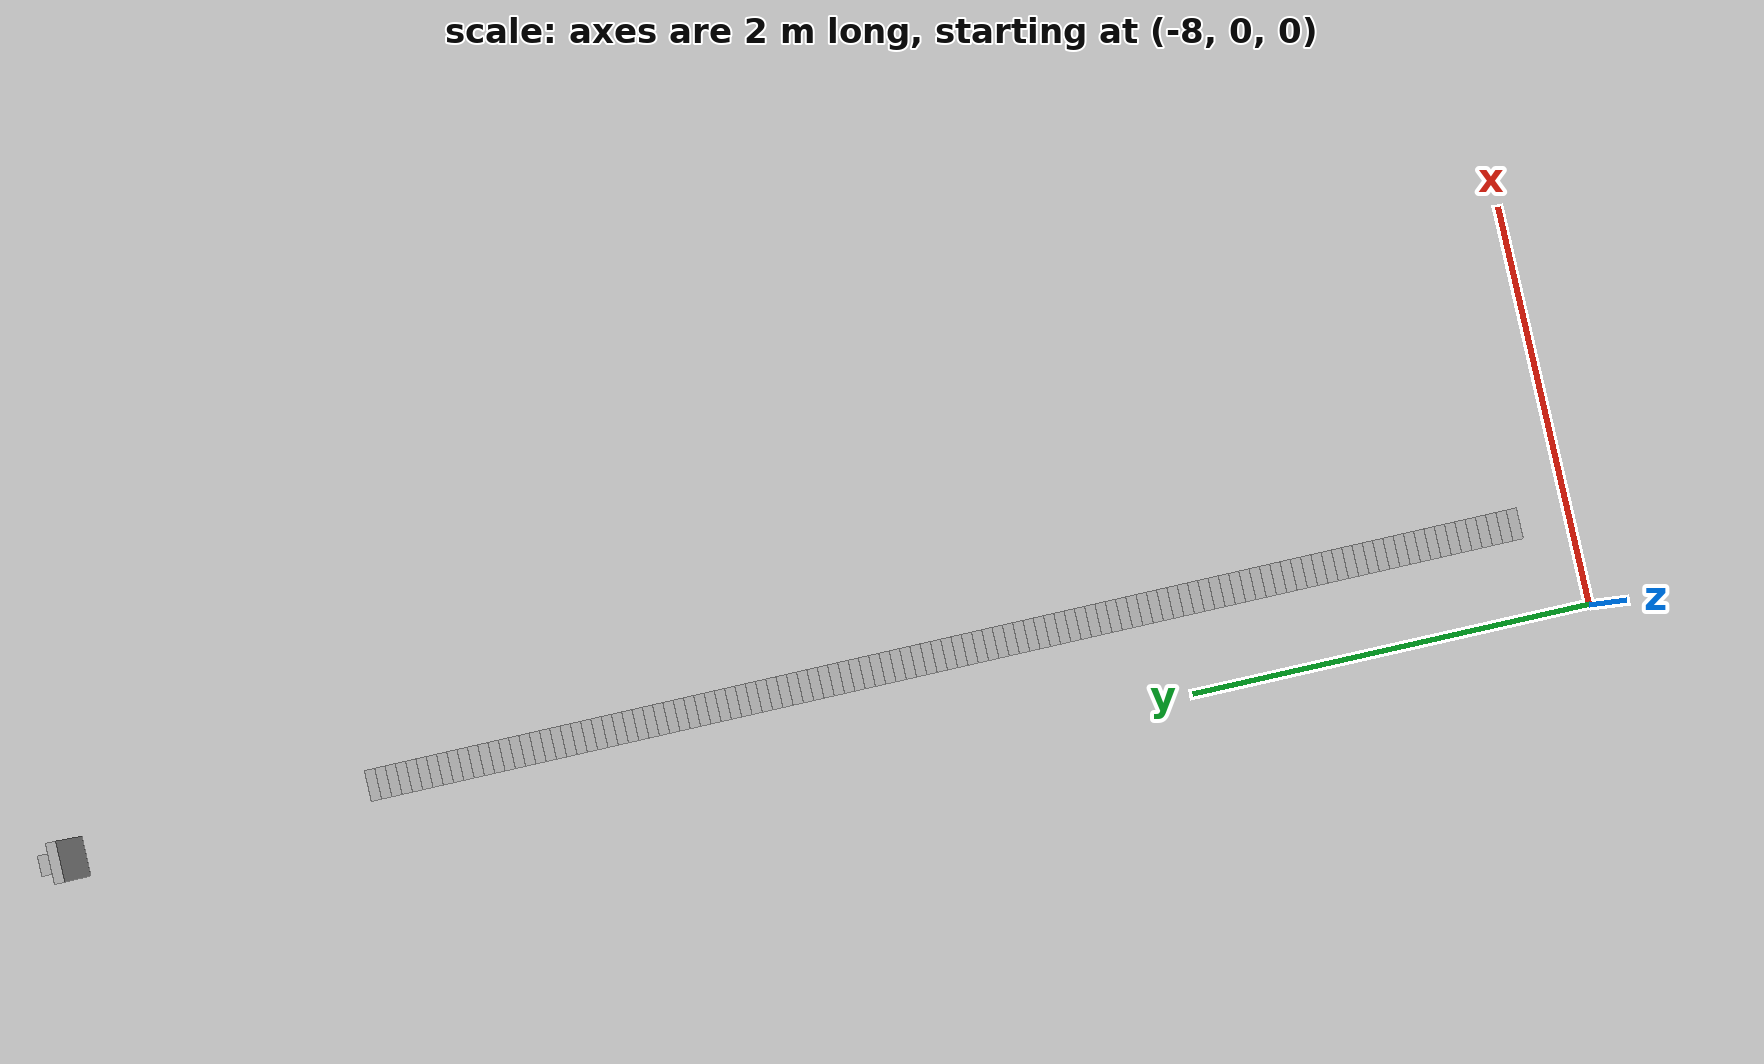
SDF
<sdf version="1.6">
 <world name="df_walled">
  <include><uri>model://sun</uri></include>
  <include><uri>model://ground_plane</uri></include>
  <model name="df_walls">
   <static>true</static>
   <link name="wall_00000">
    <pose>-7.5610 7.5410 0.7500 0 0 0</pose>
    <collision name="col"><geometry><box><size>0.1000 0.0500 1.5000</size></box></geometry></collision>
    <visual name="vis">
     <geometry><box><size>0.1000 0.0500 1.5000</size></box></geometry>
     <material><ambient>0.5 0.5 0.5 1</ambient><diffuse>0.7 0.7 0.7 1</diffuse></material>
    </visual>
   </link>
   <link name="wall_00001">
    <pose>-7.5610 7.4910 0.7500 0 0 0</pose>
    <collision name="col"><geometry><box><size>0.2000 0.0500 1.5000</size></box></geometry></collision>
    <visual name="vis">
     <geometry><box><size>0.2000 0.0500 1.5000</size></box></geometry>
     <material><ambient>0.5 0.5 0.5 1</ambient><diffuse>0.7 0.7 0.7 1</diffuse></material>
    </visual>
   </link>
   <link name="wall_00072">
    <pose>-7.5360 5.9410 0.7500 0 0 0</pose>
    <collision name="col"><geometry><box><size>0.1500 0.0500 1.5000</size></box></geometry></collision>
    <visual name="vis">
     <geometry><box><size>0.1500 0.0500 1.5000</size></box></geometry>
     <material><ambient>0.5 0.5 0.5 1</ambient><diffuse>0.7 0.7 0.7 1</diffuse></material>
    </visual>
   </link>
   <link name="wall_00075">
    <pose>-7.5360 5.8910 0.7500 0 0 0</pose>
    <collision name="col"><geometry><box><size>0.1500 0.0500 1.5000</size></box></geometry></collision>
    <visual name="vis">
     <geometry><box><size>0.1500 0.0500 1.5000</size></box></geometry>
     <material><ambient>0.5 0.5 0.5 1</ambient><diffuse>0.7 0.7 0.7 1</diffuse></material>
    </visual>
   </link>
   <link name="wall_00078">
    <pose>-7.5360 5.8410 0.7500 0 0 0</pose>
    <collision name="col"><geometry><box><size>0.1500 0.0500 1.5000</size></box></geometry></collision>
    <visual name="vis">
     <geometry><box><size>0.1500 0.0500 1.5000</size></box></geometry>
     <material><ambient>0.5 0.5 0.5 1</ambient><diffuse>0.7 0.7 0.7 1</diffuse></material>
    </visual>
   </link>
   <link name="wall_00081">
    <pose>-7.5360 5.7910 0.7500 0 0 0</pose>
    <collision name="col"><geometry><box><size>0.1500 0.0500 1.5000</size></box></geometry></collision>
    <visual name="vis">
     <geometry><box><size>0.1500 0.0500 1.5000</size></box></geometry>
     <material><ambient>0.5 0.5 0.5 1</ambient><diffuse>0.7 0.7 0.7 1</diffuse></material>
    </visual>
   </link>
   <link name="wall_00084">
    <pose>-7.5360 5.7410 0.7500 0 0 0</pose>
    <collision name="col"><geometry><box><size>0.1500 0.0500 1.5000</size></box></geometry></collision>
    <visual name="vis">
     <geometry><box><size>0.1500 0.0500 1.5000</size></box></geometry>
     <material><ambient>0.5 0.5 0.5 1</ambient><diffuse>0.7 0.7 0.7 1</diffuse></material>
    </visual>
   </link>
   <link name="wall_00087">
    <pose>-7.5360 5.6910 0.7500 0 0 0</pose>
    <collision name="col"><geometry><box><size>0.1500 0.0500 1.5000</size></box></geometry></collision>
    <visual name="vis">
     <geometry><box><size>0.1500 0.0500 1.5000</size></box></geometry>
     <material><ambient>0.5 0.5 0.5 1</ambient><diffuse>0.7 0.7 0.7 1</diffuse></material>
    </visual>
   </link>
   <link name="wall_00090">
    <pose>-7.5360 5.6410 0.7500 0 0 0</pose>
    <collision name="col"><geometry><box><size>0.1500 0.0500 1.5000</size></box></geometry></collision>
    <visual name="vis">
     <geometry><box><size>0.1500 0.0500 1.5000</size></box></geometry>
     <material><ambient>0.5 0.5 0.5 1</ambient><diffuse>0.7 0.7 0.7 1</diffuse></material>
    </visual>
   </link>
   <link name="wall_00093">
    <pose>-7.5360 5.5910 0.7500 0 0 0</pose>
    <collision name="col"><geometry><box><size>0.1500 0.0500 1.5000</size></box></geometry></collision>
    <visual name="vis">
     <geometry><box><size>0.1500 0.0500 1.5000</size></box></geometry>
     <material><ambient>0.5 0.5 0.5 1</ambient><diffuse>0.7 0.7 0.7 1</diffuse></material>
    </visual>
   </link>
   <link name="wall_00096">
    <pose>-7.5360 5.5410 0.7500 0 0 0</pose>
    <collision name="col"><geometry><box><size>0.1500 0.0500 1.5000</size></box></geometry></collision>
    <visual name="vis">
     <geometry><box><size>0.1500 0.0500 1.5000</size></box></geometry>
     <material><ambient>0.5 0.5 0.5 1</ambient><diffuse>0.7 0.7 0.7 1</diffuse></material>
    </visual>
   </link>
   <link name="wall_00099">
    <pose>-7.5360 5.4910 0.7500 0 0 0</pose>
    <collision name="col"><geometry><box><size>0.1500 0.0500 1.5000</size></box></geometry></collision>
    <visual name="vis">
     <geometry><box><size>0.1500 0.0500 1.5000</size></box></geometry>
     <material><ambient>0.5 0.5 0.5 1</ambient><diffuse>0.7 0.7 0.7 1</diffuse></material>
    </visual>
   </link>
   <link name="wall_00102">
    <pose>-7.5360 5.4410 0.7500 0 0 0</pose>
    <collision name="col"><geometry><box><size>0.1500 0.0500 1.5000</size></box></geometry></collision>
    <visual name="vis">
     <geometry><box><size>0.1500 0.0500 1.5000</size></box></geometry>
     <material><ambient>0.5 0.5 0.5 1</ambient><diffuse>0.7 0.7 0.7 1</diffuse></material>
    </visual>
   </link>
   <link name="wall_00105">
    <pose>-7.5360 5.3910 0.7500 0 0 0</pose>
    <collision name="col"><geometry><box><size>0.1500 0.0500 1.5000</size></box></geometry></collision>
    <visual name="vis">
     <geometry><box><size>0.1500 0.0500 1.5000</size></box></geometry>
     <material><ambient>0.5 0.5 0.5 1</ambient><diffuse>0.7 0.7 0.7 1</diffuse></material>
    </visual>
   </link>
   <link name="wall_00108">
    <pose>-7.5360 5.3410 0.7500 0 0 0</pose>
    <collision name="col"><geometry><box><size>0.1500 0.0500 1.5000</size></box></geometry></collision>
    <visual name="vis">
     <geometry><box><size>0.1500 0.0500 1.5000</size></box></geometry>
     <material><ambient>0.5 0.5 0.5 1</ambient><diffuse>0.7 0.7 0.7 1</diffuse></material>
    </visual>
   </link>
   <link name="wall_00111">
    <pose>-7.5360 5.2910 0.7500 0 0 0</pose>
    <collision name="col"><geometry><box><size>0.1500 0.0500 1.5000</size></box></geometry></collision>
    <visual name="vis">
     <geometry><box><size>0.1500 0.0500 1.5000</size></box></geometry>
     <material><ambient>0.5 0.5 0.5 1</ambient><diffuse>0.7 0.7 0.7 1</diffuse></material>
    </visual>
   </link>
   <link name="wall_00114">
    <pose>-7.5360 5.2410 0.7500 0 0 0</pose>
    <collision name="col"><geometry><box><size>0.1500 0.0500 1.5000</size></box></geometry></collision>
    <visual name="vis">
     <geometry><box><size>0.1500 0.0500 1.5000</size></box></geometry>
     <material><ambient>0.5 0.5 0.5 1</ambient><diffuse>0.7 0.7 0.7 1</diffuse></material>
    </visual>
   </link>
   <link name="wall_00117">
    <pose>-7.5360 5.1910 0.7500 0 0 0</pose>
    <collision name="col"><geometry><box><size>0.1500 0.0500 1.5000</size></box></geometry></collision>
    <visual name="vis">
     <geometry><box><size>0.1500 0.0500 1.5000</size></box></geometry>
     <material><ambient>0.5 0.5 0.5 1</ambient><diffuse>0.7 0.7 0.7 1</diffuse></material>
    </visual>
   </link>
   <link name="wall_00120">
    <pose>-7.5360 5.1410 0.7500 0 0 0</pose>
    <collision name="col"><geometry><box><size>0.1500 0.0500 1.5000</size></box></geometry></collision>
    <visual name="vis">
     <geometry><box><size>0.1500 0.0500 1.5000</size></box></geometry>
     <material><ambient>0.5 0.5 0.5 1</ambient><diffuse>0.7 0.7 0.7 1</diffuse></material>
    </visual>
   </link>
   <link name="wall_00123">
    <pose>-7.5360 5.0910 0.7500 0 0 0</pose>
    <collision name="col"><geometry><box><size>0.1500 0.0500 1.5000</size></box></geometry></collision>
    <visual name="vis">
     <geometry><box><size>0.1500 0.0500 1.5000</size></box></geometry>
     <material><ambient>0.5 0.5 0.5 1</ambient><diffuse>0.7 0.7 0.7 1</diffuse></material>
    </visual>
   </link>
   <link name="wall_00126">
    <pose>-7.5360 5.0410 0.7500 0 0 0</pose>
    <collision name="col"><geometry><box><size>0.1500 0.0500 1.5000</size></box></geometry></collision>
    <visual name="vis">
     <geometry><box><size>0.1500 0.0500 1.5000</size></box></geometry>
     <material><ambient>0.5 0.5 0.5 1</ambient><diffuse>0.7 0.7 0.7 1</diffuse></material>
    </visual>
   </link>
   <link name="wall_00129">
    <pose>-7.5360 4.9910 0.7500 0 0 0</pose>
    <collision name="col"><geometry><box><size>0.1500 0.0500 1.5000</size></box></geometry></collision>
    <visual name="vis">
     <geometry><box><size>0.1500 0.0500 1.5000</size></box></geometry>
     <material><ambient>0.5 0.5 0.5 1</ambient><diffuse>0.7 0.7 0.7 1</diffuse></material>
    </visual>
   </link>
   <link name="wall_00132">
    <pose>-7.5360 4.9410 0.7500 0 0 0</pose>
    <collision name="col"><geometry><box><size>0.1500 0.0500 1.5000</size></box></geometry></collision>
    <visual name="vis">
     <geometry><box><size>0.1500 0.0500 1.5000</size></box></geometry>
     <material><ambient>0.5 0.5 0.5 1</ambient><diffuse>0.7 0.7 0.7 1</diffuse></material>
    </visual>
   </link>
   <link name="wall_00135">
    <pose>-7.5360 4.8910 0.7500 0 0 0</pose>
    <collision name="col"><geometry><box><size>0.1500 0.0500 1.5000</size></box></geometry></collision>
    <visual name="vis">
     <geometry><box><size>0.1500 0.0500 1.5000</size></box></geometry>
     <material><ambient>0.5 0.5 0.5 1</ambient><diffuse>0.7 0.7 0.7 1</diffuse></material>
    </visual>
   </link>
   <link name="wall_00138">
    <pose>-7.5360 4.8410 0.7500 0 0 0</pose>
    <collision name="col"><geometry><box><size>0.1500 0.0500 1.5000</size></box></geometry></collision>
    <visual name="vis">
     <geometry><box><size>0.1500 0.0500 1.5000</size></box></geometry>
     <material><ambient>0.5 0.5 0.5 1</ambient><diffuse>0.7 0.7 0.7 1</diffuse></material>
    </visual>
   </link>
   <link name="wall_00141">
    <pose>-7.5360 4.7910 0.7500 0 0 0</pose>
    <collision name="col"><geometry><box><size>0.1500 0.0500 1.5000</size></box></geometry></collision>
    <visual name="vis">
     <geometry><box><size>0.1500 0.0500 1.5000</size></box></geometry>
     <material><ambient>0.5 0.5 0.5 1</ambient><diffuse>0.7 0.7 0.7 1</diffuse></material>
    </visual>
   </link>
   <link name="wall_00144">
    <pose>-7.5360 4.7410 0.7500 0 0 0</pose>
    <collision name="col"><geometry><box><size>0.1500 0.0500 1.5000</size></box></geometry></collision>
    <visual name="vis">
     <geometry><box><size>0.1500 0.0500 1.5000</size></box></geometry>
     <material><ambient>0.5 0.5 0.5 1</ambient><diffuse>0.7 0.7 0.7 1</diffuse></material>
    </visual>
   </link>
   <link name="wall_00147">
    <pose>-7.5360 4.6910 0.7500 0 0 0</pose>
    <collision name="col"><geometry><box><size>0.1500 0.0500 1.5000</size></box></geometry></collision>
    <visual name="vis">
     <geometry><box><size>0.1500 0.0500 1.5000</size></box></geometry>
     <material><ambient>0.5 0.5 0.5 1</ambient><diffuse>0.7 0.7 0.7 1</diffuse></material>
    </visual>
   </link>
   <link name="wall_00150">
    <pose>-7.5360 4.6410 0.7500 0 0 0</pose>
    <collision name="col"><geometry><box><size>0.1500 0.0500 1.5000</size></box></geometry></collision>
    <visual name="vis">
     <geometry><box><size>0.1500 0.0500 1.5000</size></box></geometry>
     <material><ambient>0.5 0.5 0.5 1</ambient><diffuse>0.7 0.7 0.7 1</diffuse></material>
    </visual>
   </link>
   <link name="wall_00153">
    <pose>-7.5360 4.5910 0.7500 0 0 0</pose>
    <collision name="col"><geometry><box><size>0.1500 0.0500 1.5000</size></box></geometry></collision>
    <visual name="vis">
     <geometry><box><size>0.1500 0.0500 1.5000</size></box></geometry>
     <material><ambient>0.5 0.5 0.5 1</ambient><diffuse>0.7 0.7 0.7 1</diffuse></material>
    </visual>
   </link>
   <link name="wall_00156">
    <pose>-7.5360 4.5410 0.7500 0 0 0</pose>
    <collision name="col"><geometry><box><size>0.1500 0.0500 1.5000</size></box></geometry></collision>
    <visual name="vis">
     <geometry><box><size>0.1500 0.0500 1.5000</size></box></geometry>
     <material><ambient>0.5 0.5 0.5 1</ambient><diffuse>0.7 0.7 0.7 1</diffuse></material>
    </visual>
   </link>
   <link name="wall_00159">
    <pose>-7.5360 4.4910 0.7500 0 0 0</pose>
    <collision name="col"><geometry><box><size>0.1500 0.0500 1.5000</size></box></geometry></collision>
    <visual name="vis">
     <geometry><box><size>0.1500 0.0500 1.5000</size></box></geometry>
     <material><ambient>0.5 0.5 0.5 1</ambient><diffuse>0.7 0.7 0.7 1</diffuse></material>
    </visual>
   </link>
   <link name="wall_00162">
    <pose>-7.5360 4.4410 0.7500 0 0 0</pose>
    <collision name="col"><geometry><box><size>0.1500 0.0500 1.5000</size></box></geometry></collision>
    <visual name="vis">
     <geometry><box><size>0.1500 0.0500 1.5000</size></box></geometry>
     <material><ambient>0.5 0.5 0.5 1</ambient><diffuse>0.7 0.7 0.7 1</diffuse></material>
    </visual>
   </link>
   <link name="wall_00165">
    <pose>-7.5360 4.3910 0.7500 0 0 0</pose>
    <collision name="col"><geometry><box><size>0.1500 0.0500 1.5000</size></box></geometry></collision>
    <visual name="vis">
     <geometry><box><size>0.1500 0.0500 1.5000</size></box></geometry>
     <material><ambient>0.5 0.5 0.5 1</ambient><diffuse>0.7 0.7 0.7 1</diffuse></material>
    </visual>
   </link>
   <link name="wall_00168">
    <pose>-7.5360 4.3410 0.7500 0 0 0</pose>
    <collision name="col"><geometry><box><size>0.1500 0.0500 1.5000</size></box></geometry></collision>
    <visual name="vis">
     <geometry><box><size>0.1500 0.0500 1.5000</size></box></geometry>
     <material><ambient>0.5 0.5 0.5 1</ambient><diffuse>0.7 0.7 0.7 1</diffuse></material>
    </visual>
   </link>
   <link name="wall_00171">
    <pose>-7.5360 4.2910 0.7500 0 0 0</pose>
    <collision name="col"><geometry><box><size>0.1500 0.0500 1.5000</size></box></geometry></collision>
    <visual name="vis">
     <geometry><box><size>0.1500 0.0500 1.5000</size></box></geometry>
     <material><ambient>0.5 0.5 0.5 1</ambient><diffuse>0.7 0.7 0.7 1</diffuse></material>
    </visual>
   </link>
   <link name="wall_00173">
    <pose>-7.5360 4.2410 0.7500 0 0 0</pose>
    <collision name="col"><geometry><box><size>0.1500 0.0500 1.5000</size></box></geometry></collision>
    <visual name="vis">
     <geometry><box><size>0.1500 0.0500 1.5000</size></box></geometry>
     <material><ambient>0.5 0.5 0.5 1</ambient><diffuse>0.7 0.7 0.7 1</diffuse></material>
    </visual>
   </link>
   <link name="wall_00175">
    <pose>-7.5360 4.1910 0.7500 0 0 0</pose>
    <collision name="col"><geometry><box><size>0.1500 0.0500 1.5000</size></box></geometry></collision>
    <visual name="vis">
     <geometry><box><size>0.1500 0.0500 1.5000</size></box></geometry>
     <material><ambient>0.5 0.5 0.5 1</ambient><diffuse>0.7 0.7 0.7 1</diffuse></material>
    </visual>
   </link>
   <link name="wall_00177">
    <pose>-7.5360 4.1410 0.7500 0 0 0</pose>
    <collision name="col"><geometry><box><size>0.1500 0.0500 1.5000</size></box></geometry></collision>
    <visual name="vis">
     <geometry><box><size>0.1500 0.0500 1.5000</size></box></geometry>
     <material><ambient>0.5 0.5 0.5 1</ambient><diffuse>0.7 0.7 0.7 1</diffuse></material>
    </visual>
   </link>
   <link name="wall_00179">
    <pose>-7.5360 4.0910 0.7500 0 0 0</pose>
    <collision name="col"><geometry><box><size>0.1500 0.0500 1.5000</size></box></geometry></collision>
    <visual name="vis">
     <geometry><box><size>0.1500 0.0500 1.5000</size></box></geometry>
     <material><ambient>0.5 0.5 0.5 1</ambient><diffuse>0.7 0.7 0.7 1</diffuse></material>
    </visual>
   </link>
   <link name="wall_00181">
    <pose>-7.5360 4.0410 0.7500 0 0 0</pose>
    <collision name="col"><geometry><box><size>0.1500 0.0500 1.5000</size></box></geometry></collision>
    <visual name="vis">
     <geometry><box><size>0.1500 0.0500 1.5000</size></box></geometry>
     <material><ambient>0.5 0.5 0.5 1</ambient><diffuse>0.7 0.7 0.7 1</diffuse></material>
    </visual>
   </link>
   <link name="wall_00183">
    <pose>-7.5360 3.9910 0.7500 0 0 0</pose>
    <collision name="col"><geometry><box><size>0.1500 0.0500 1.5000</size></box></geometry></collision>
    <visual name="vis">
     <geometry><box><size>0.1500 0.0500 1.5000</size></box></geometry>
     <material><ambient>0.5 0.5 0.5 1</ambient><diffuse>0.7 0.7 0.7 1</diffuse></material>
    </visual>
   </link>
   <link name="wall_00185">
    <pose>-7.5360 3.9410 0.7500 0 0 0</pose>
    <collision name="col"><geometry><box><size>0.1500 0.0500 1.5000</size></box></geometry></collision>
    <visual name="vis">
     <geometry><box><size>0.1500 0.0500 1.5000</size></box></geometry>
     <material><ambient>0.5 0.5 0.5 1</ambient><diffuse>0.7 0.7 0.7 1</diffuse></material>
    </visual>
   </link>
   <link name="wall_00187">
    <pose>-7.5360 3.8910 0.7500 0 0 0</pose>
    <collision name="col"><geometry><box><size>0.1500 0.0500 1.5000</size></box></geometry></collision>
    <visual name="vis">
     <geometry><box><size>0.1500 0.0500 1.5000</size></box></geometry>
     <material><ambient>0.5 0.5 0.5 1</ambient><diffuse>0.7 0.7 0.7 1</diffuse></material>
    </visual>
   </link>
   <link name="wall_00189">
    <pose>-7.5360 3.8410 0.7500 0 0 0</pose>
    <collision name="col"><geometry><box><size>0.1500 0.0500 1.5000</size></box></geometry></collision>
    <visual name="vis">
     <geometry><box><size>0.1500 0.0500 1.5000</size></box></geometry>
     <material><ambient>0.5 0.5 0.5 1</ambient><diffuse>0.7 0.7 0.7 1</diffuse></material>
    </visual>
   </link>
   <link name="wall_00191">
    <pose>-7.5360 3.7910 0.7500 0 0 0</pose>
    <collision name="col"><geometry><box><size>0.1500 0.0500 1.5000</size></box></geometry></collision>
    <visual name="vis">
     <geometry><box><size>0.1500 0.0500 1.5000</size></box></geometry>
     <material><ambient>0.5 0.5 0.5 1</ambient><diffuse>0.7 0.7 0.7 1</diffuse></material>
    </visual>
   </link>
   <link name="wall_00193">
    <pose>-7.5360 3.7410 0.7500 0 0 0</pose>
    <collision name="col"><geometry><box><size>0.1500 0.0500 1.5000</size></box></geometry></collision>
    <visual name="vis">
     <geometry><box><size>0.1500 0.0500 1.5000</size></box></geometry>
     <material><ambient>0.5 0.5 0.5 1</ambient><diffuse>0.7 0.7 0.7 1</diffuse></material>
    </visual>
   </link>
   <link name="wall_00195">
    <pose>-7.5360 3.6910 0.7500 0 0 0</pose>
    <collision name="col"><geometry><box><size>0.1500 0.0500 1.5000</size></box></geometry></collision>
    <visual name="vis">
     <geometry><box><size>0.1500 0.0500 1.5000</size></box></geometry>
     <material><ambient>0.5 0.5 0.5 1</ambient><diffuse>0.7 0.7 0.7 1</diffuse></material>
    </visual>
   </link>
   <link name="wall_00197">
    <pose>-7.5360 3.6410 0.7500 0 0 0</pose>
    <collision name="col"><geometry><box><size>0.1500 0.0500 1.5000</size></box></geometry></collision>
    <visual name="vis">
     <geometry><box><size>0.1500 0.0500 1.5000</size></box></geometry>
     <material><ambient>0.5 0.5 0.5 1</ambient><diffuse>0.7 0.7 0.7 1</diffuse></material>
    </visual>
   </link>
   <link name="wall_00199">
    <pose>-7.5360 3.5910 0.7500 0 0 0</pose>
    <collision name="col"><geometry><box><size>0.1500 0.0500 1.5000</size></box></geometry></collision>
    <visual name="vis">
     <geometry><box><size>0.1500 0.0500 1.5000</size></box></geometry>
     <material><ambient>0.5 0.5 0.5 1</ambient><diffuse>0.7 0.7 0.7 1</diffuse></material>
    </visual>
   </link>
   <link name="wall_00201">
    <pose>-7.5360 3.5410 0.7500 0 0 0</pose>
    <collision name="col"><geometry><box><size>0.1500 0.0500 1.5000</size></box></geometry></collision>
    <visual name="vis">
     <geometry><box><size>0.1500 0.0500 1.5000</size></box></geometry>
     <material><ambient>0.5 0.5 0.5 1</ambient><diffuse>0.7 0.7 0.7 1</diffuse></material>
    </visual>
   </link>
   <link name="wall_00203">
    <pose>-7.5360 3.4910 0.7500 0 0 0</pose>
    <collision name="col"><geometry><box><size>0.1500 0.0500 1.5000</size></box></geometry></collision>
    <visual name="vis">
     <geometry><box><size>0.1500 0.0500 1.5000</size></box></geometry>
     <material><ambient>0.5 0.5 0.5 1</ambient><diffuse>0.7 0.7 0.7 1</diffuse></material>
    </visual>
   </link>
   <link name="wall_00205">
    <pose>-7.5360 3.4410 0.7500 0 0 0</pose>
    <collision name="col"><geometry><box><size>0.1500 0.0500 1.5000</size></box></geometry></collision>
    <visual name="vis">
     <geometry><box><size>0.1500 0.0500 1.5000</size></box></geometry>
     <material><ambient>0.5 0.5 0.5 1</ambient><diffuse>0.7 0.7 0.7 1</diffuse></material>
    </visual>
   </link>
   <link name="wall_00207">
    <pose>-7.5360 3.3910 0.7500 0 0 0</pose>
    <collision name="col"><geometry><box><size>0.1500 0.0500 1.5000</size></box></geometry></collision>
    <visual name="vis">
     <geometry><box><size>0.1500 0.0500 1.5000</size></box></geometry>
     <material><ambient>0.5 0.5 0.5 1</ambient><diffuse>0.7 0.7 0.7 1</diffuse></material>
    </visual>
   </link>
   <link name="wall_00209">
    <pose>-7.5360 3.3410 0.7500 0 0 0</pose>
    <collision name="col"><geometry><box><size>0.1500 0.0500 1.5000</size></box></geometry></collision>
    <visual name="vis">
     <geometry><box><size>0.1500 0.0500 1.5000</size></box></geometry>
     <material><ambient>0.5 0.5 0.5 1</ambient><diffuse>0.7 0.7 0.7 1</diffuse></material>
    </visual>
   </link>
   <link name="wall_00211">
    <pose>-7.5360 3.2910 0.7500 0 0 0</pose>
    <collision name="col"><geometry><box><size>0.1500 0.0500 1.5000</size></box></geometry></collision>
    <visual name="vis">
     <geometry><box><size>0.1500 0.0500 1.5000</size></box></geometry>
     <material><ambient>0.5 0.5 0.5 1</ambient><diffuse>0.7 0.7 0.7 1</diffuse></material>
    </visual>
   </link>
   <link name="wall_00213">
    <pose>-7.5360 3.2410 0.7500 0 0 0</pose>
    <collision name="col"><geometry><box><size>0.1500 0.0500 1.5000</size></box></geometry></collision>
    <visual name="vis">
     <geometry><box><size>0.1500 0.0500 1.5000</size></box></geometry>
     <material><ambient>0.5 0.5 0.5 1</ambient><diffuse>0.7 0.7 0.7 1</diffuse></material>
    </visual>
   </link>
   <link name="wall_00215">
    <pose>-7.5360 3.1910 0.7500 0 0 0</pose>
    <collision name="col"><geometry><box><size>0.1500 0.0500 1.5000</size></box></geometry></collision>
    <visual name="vis">
     <geometry><box><size>0.1500 0.0500 1.5000</size></box></geometry>
     <material><ambient>0.5 0.5 0.5 1</ambient><diffuse>0.7 0.7 0.7 1</diffuse></material>
    </visual>
   </link>
   <link name="wall_00217">
    <pose>-7.5360 3.1410 0.7500 0 0 0</pose>
    <collision name="col"><geometry><box><size>0.1500 0.0500 1.5000</size></box></geometry></collision>
    <visual name="vis">
     <geometry><box><size>0.1500 0.0500 1.5000</size></box></geometry>
     <material><ambient>0.5 0.5 0.5 1</ambient><diffuse>0.7 0.7 0.7 1</diffuse></material>
    </visual>
   </link>
   <link name="wall_00219">
    <pose>-7.5360 3.0910 0.7500 0 0 0</pose>
    <collision name="col"><geometry><box><size>0.1500 0.0500 1.5000</size></box></geometry></collision>
    <visual name="vis">
     <geometry><box><size>0.1500 0.0500 1.5000</size></box></geometry>
     <material><ambient>0.5 0.5 0.5 1</ambient><diffuse>0.7 0.7 0.7 1</diffuse></material>
    </visual>
   </link>
   <link name="wall_00221">
    <pose>-7.5360 3.0410 0.7500 0 0 0</pose>
    <collision name="col"><geometry><box><size>0.1500 0.0500 1.5000</size></box></geometry></collision>
    <visual name="vis">
     <geometry><box><size>0.1500 0.0500 1.5000</size></box></geometry>
     <material><ambient>0.5 0.5 0.5 1</ambient><diffuse>0.7 0.7 0.7 1</diffuse></material>
    </visual>
   </link>
   <link name="wall_00223">
    <pose>-7.5360 2.9910 0.7500 0 0 0</pose>
    <collision name="col"><geometry><box><size>0.1500 0.0500 1.5000</size></box></geometry></collision>
    <visual name="vis">
     <geometry><box><size>0.1500 0.0500 1.5000</size></box></geometry>
     <material><ambient>0.5 0.5 0.5 1</ambient><diffuse>0.7 0.7 0.7 1</diffuse></material>
    </visual>
   </link>
   <link name="wall_00225">
    <pose>-7.5360 2.9410 0.7500 0 0 0</pose>
    <collision name="col"><geometry><box><size>0.1500 0.0500 1.5000</size></box></geometry></collision>
    <visual name="vis">
     <geometry><box><size>0.1500 0.0500 1.5000</size></box></geometry>
     <material><ambient>0.5 0.5 0.5 1</ambient><diffuse>0.7 0.7 0.7 1</diffuse></material>
    </visual>
   </link>
   <link name="wall_00227">
    <pose>-7.5360 2.8910 0.7500 0 0 0</pose>
    <collision name="col"><geometry><box><size>0.1500 0.0500 1.5000</size></box></geometry></collision>
    <visual name="vis">
     <geometry><box><size>0.1500 0.0500 1.5000</size></box></geometry>
     <material><ambient>0.5 0.5 0.5 1</ambient><diffuse>0.7 0.7 0.7 1</diffuse></material>
    </visual>
   </link>
   <link name="wall_00229">
    <pose>-7.5360 2.8410 0.7500 0 0 0</pose>
    <collision name="col"><geometry><box><size>0.1500 0.0500 1.5000</size></box></geometry></collision>
    <visual name="vis">
     <geometry><box><size>0.1500 0.0500 1.5000</size></box></geometry>
     <material><ambient>0.5 0.5 0.5 1</ambient><diffuse>0.7 0.7 0.7 1</diffuse></material>
    </visual>
   </link>
   <link name="wall_00231">
    <pose>-7.5360 2.7910 0.7500 0 0 0</pose>
    <collision name="col"><geometry><box><size>0.1500 0.0500 1.5000</size></box></geometry></collision>
    <visual name="vis">
     <geometry><box><size>0.1500 0.0500 1.5000</size></box></geometry>
     <material><ambient>0.5 0.5 0.5 1</ambient><diffuse>0.7 0.7 0.7 1</diffuse></material>
    </visual>
   </link>
   <link name="wall_00233">
    <pose>-7.5360 2.7410 0.7500 0 0 0</pose>
    <collision name="col"><geometry><box><size>0.1500 0.0500 1.5000</size></box></geometry></collision>
    <visual name="vis">
     <geometry><box><size>0.1500 0.0500 1.5000</size></box></geometry>
     <material><ambient>0.5 0.5 0.5 1</ambient><diffuse>0.7 0.7 0.7 1</diffuse></material>
    </visual>
   </link>
   <link name="wall_00235">
    <pose>-7.5360 2.6910 0.7500 0 0 0</pose>
    <collision name="col"><geometry><box><size>0.1500 0.0500 1.5000</size></box></geometry></collision>
    <visual name="vis">
     <geometry><box><size>0.1500 0.0500 1.5000</size></box></geometry>
     <material><ambient>0.5 0.5 0.5 1</ambient><diffuse>0.7 0.7 0.7 1</diffuse></material>
    </visual>
   </link>
   <link name="wall_00237">
    <pose>-7.5360 2.6410 0.7500 0 0 0</pose>
    <collision name="col"><geometry><box><size>0.1500 0.0500 1.5000</size></box></geometry></collision>
    <visual name="vis">
     <geometry><box><size>0.1500 0.0500 1.5000</size></box></geometry>
     <material><ambient>0.5 0.5 0.5 1</ambient><diffuse>0.7 0.7 0.7 1</diffuse></material>
    </visual>
   </link>
   <link name="wall_00239">
    <pose>-7.5360 2.5910 0.7500 0 0 0</pose>
    <collision name="col"><geometry><box><size>0.1500 0.0500 1.5000</size></box></geometry></collision>
    <visual name="vis">
     <geometry><box><size>0.1500 0.0500 1.5000</size></box></geometry>
     <material><ambient>0.5 0.5 0.5 1</ambient><diffuse>0.7 0.7 0.7 1</diffuse></material>
    </visual>
   </link>
   <link name="wall_00241">
    <pose>-7.5360 2.5410 0.7500 0 0 0</pose>
    <collision name="col"><geometry><box><size>0.1500 0.0500 1.5000</size></box></geometry></collision>
    <visual name="vis">
     <geometry><box><size>0.1500 0.0500 1.5000</size></box></geometry>
     <material><ambient>0.5 0.5 0.5 1</ambient><diffuse>0.7 0.7 0.7 1</diffuse></material>
    </visual>
   </link>
   <link name="wall_00243">
    <pose>-7.5360 2.4910 0.7500 0 0 0</pose>
    <collision name="col"><geometry><box><size>0.1500 0.0500 1.5000</size></box></geometry></collision>
    <visual name="vis">
     <geometry><box><size>0.1500 0.0500 1.5000</size></box></geometry>
     <material><ambient>0.5 0.5 0.5 1</ambient><diffuse>0.7 0.7 0.7 1</diffuse></material>
    </visual>
   </link>
   <link name="wall_00245">
    <pose>-7.5360 2.4410 0.7500 0 0 0</pose>
    <collision name="col"><geometry><box><size>0.1500 0.0500 1.5000</size></box></geometry></collision>
    <visual name="vis">
     <geometry><box><size>0.1500 0.0500 1.5000</size></box></geometry>
     <material><ambient>0.5 0.5 0.5 1</ambient><diffuse>0.7 0.7 0.7 1</diffuse></material>
    </visual>
   </link>
   <link name="wall_00247">
    <pose>-7.5360 2.3910 0.7500 0 0 0</pose>
    <collision name="col"><geometry><box><size>0.1500 0.0500 1.5000</size></box></geometry></collision>
    <visual name="vis">
     <geometry><box><size>0.1500 0.0500 1.5000</size></box></geometry>
     <material><ambient>0.5 0.5 0.5 1</ambient><diffuse>0.7 0.7 0.7 1</diffuse></material>
    </visual>
   </link>
   <link name="wall_00249">
    <pose>-7.5360 2.3410 0.7500 0 0 0</pose>
    <collision name="col"><geometry><box><size>0.1500 0.0500 1.5000</size></box></geometry></collision>
    <visual name="vis">
     <geometry><box><size>0.1500 0.0500 1.5000</size></box></geometry>
     <material><ambient>0.5 0.5 0.5 1</ambient><diffuse>0.7 0.7 0.7 1</diffuse></material>
    </visual>
   </link>
   <link name="wall_00251">
    <pose>-7.5360 2.2910 0.7500 0 0 0</pose>
    <collision name="col"><geometry><box><size>0.1500 0.0500 1.5000</size></box></geometry></collision>
    <visual name="vis">
     <geometry><box><size>0.1500 0.0500 1.5000</size></box></geometry>
     <material><ambient>0.5 0.5 0.5 1</ambient><diffuse>0.7 0.7 0.7 1</diffuse></material>
    </visual>
   </link>
   <link name="wall_00253">
    <pose>-7.5360 2.2410 0.7500 0 0 0</pose>
    <collision name="col"><geometry><box><size>0.1500 0.0500 1.5000</size></box></geometry></collision>
    <visual name="vis">
     <geometry><box><size>0.1500 0.0500 1.5000</size></box></geometry>
     <material><ambient>0.5 0.5 0.5 1</ambient><diffuse>0.7 0.7 0.7 1</diffuse></material>
    </visual>
   </link>
   <link name="wall_00255">
    <pose>-7.5360 2.1910 0.7500 0 0 0</pose>
    <collision name="col"><geometry><box><size>0.1500 0.0500 1.5000</size></box></geometry></collision>
    <visual name="vis">
     <geometry><box><size>0.1500 0.0500 1.5000</size></box></geometry>
     <material><ambient>0.5 0.5 0.5 1</ambient><diffuse>0.7 0.7 0.7 1</diffuse></material>
    </visual>
   </link>
   <link name="wall_00257">
    <pose>-7.5360 2.1410 0.7500 0 0 0</pose>
    <collision name="col"><geometry><box><size>0.1500 0.0500 1.5000</size></box></geometry></collision>
    <visual name="vis">
     <geometry><box><size>0.1500 0.0500 1.5000</size></box></geometry>
     <material><ambient>0.5 0.5 0.5 1</ambient><diffuse>0.7 0.7 0.7 1</diffuse></material>
    </visual>
   </link>
   <link name="wall_00259">
    <pose>-7.5360 2.0910 0.7500 0 0 0</pose>
    <collision name="col"><geometry><box><size>0.1500 0.0500 1.5000</size></box></geometry></collision>
    <visual name="vis">
     <geometry><box><size>0.1500 0.0500 1.5000</size></box></geometry>
     <material><ambient>0.5 0.5 0.5 1</ambient><diffuse>0.7 0.7 0.7 1</diffuse></material>
    </visual>
   </link>
   <link name="wall_00261">
    <pose>-7.5360 2.0410 0.7500 0 0 0</pose>
    <collision name="col"><geometry><box><size>0.1500 0.0500 1.5000</size></box></geometry></collision>
    <visual name="vis">
     <geometry><box><size>0.1500 0.0500 1.5000</size></box></geometry>
     <material><ambient>0.5 0.5 0.5 1</ambient><diffuse>0.7 0.7 0.7 1</diffuse></material>
    </visual>
   </link>
   <link name="wall_00263">
    <pose>-7.5360 1.9910 0.7500 0 0 0</pose>
    <collision name="col"><geometry><box><size>0.1500 0.0500 1.5000</size></box></geometry></collision>
    <visual name="vis">
     <geometry><box><size>0.1500 0.0500 1.5000</size></box></geometry>
     <material><ambient>0.5 0.5 0.5 1</ambient><diffuse>0.7 0.7 0.7 1</diffuse></material>
    </visual>
   </link>
   <link name="wall_00265">
    <pose>-7.5360 1.9410 0.7500 0 0 0</pose>
    <collision name="col"><geometry><box><size>0.1500 0.0500 1.5000</size></box></geometry></collision>
    <visual name="vis">
     <geometry><box><size>0.1500 0.0500 1.5000</size></box></geometry>
     <material><ambient>0.5 0.5 0.5 1</ambient><diffuse>0.7 0.7 0.7 1</diffuse></material>
    </visual>
   </link>
   <link name="wall_00267">
    <pose>-7.5360 1.8910 0.7500 0 0 0</pose>
    <collision name="col"><geometry><box><size>0.1500 0.0500 1.5000</size></box></geometry></collision>
    <visual name="vis">
     <geometry><box><size>0.1500 0.0500 1.5000</size></box></geometry>
     <material><ambient>0.5 0.5 0.5 1</ambient><diffuse>0.7 0.7 0.7 1</diffuse></material>
    </visual>
   </link>
   <link name="wall_00269">
    <pose>-7.5360 1.8410 0.7500 0 0 0</pose>
    <collision name="col"><geometry><box><size>0.1500 0.0500 1.5000</size></box></geometry></collision>
    <visual name="vis">
     <geometry><box><size>0.1500 0.0500 1.5000</size></box></geometry>
     <material><ambient>0.5 0.5 0.5 1</ambient><diffuse>0.7 0.7 0.7 1</diffuse></material>
    </visual>
   </link>
   <link name="wall_00271">
    <pose>-7.5360 1.7910 0.7500 0 0 0</pose>
    <collision name="col"><geometry><box><size>0.1500 0.0500 1.5000</size></box></geometry></collision>
    <visual name="vis">
     <geometry><box><size>0.1500 0.0500 1.5000</size></box></geometry>
     <material><ambient>0.5 0.5 0.5 1</ambient><diffuse>0.7 0.7 0.7 1</diffuse></material>
    </visual>
   </link>
   <link name="wall_00273">
    <pose>-7.5360 1.7410 0.7500 0 0 0</pose>
    <collision name="col"><geometry><box><size>0.1500 0.0500 1.5000</size></box></geometry></collision>
    <visual name="vis">
     <geometry><box><size>0.1500 0.0500 1.5000</size></box></geometry>
     <material><ambient>0.5 0.5 0.5 1</ambient><diffuse>0.7 0.7 0.7 1</diffuse></material>
    </visual>
   </link>
   <link name="wall_00275">
    <pose>-7.5360 1.6910 0.7500 0 0 0</pose>
    <collision name="col"><geometry><box><size>0.1500 0.0500 1.5000</size></box></geometry></collision>
    <visual name="vis">
     <geometry><box><size>0.1500 0.0500 1.5000</size></box></geometry>
     <material><ambient>0.5 0.5 0.5 1</ambient><diffuse>0.7 0.7 0.7 1</diffuse></material>
    </visual>
   </link>
   <link name="wall_00277">
    <pose>-7.5360 1.6410 0.7500 0 0 0</pose>
    <collision name="col"><geometry><box><size>0.1500 0.0500 1.5000</size></box></geometry></collision>
    <visual name="vis">
     <geometry><box><size>0.1500 0.0500 1.5000</size></box></geometry>
     <material><ambient>0.5 0.5 0.5 1</ambient><diffuse>0.7 0.7 0.7 1</diffuse></material>
    </visual>
   </link>
   <link name="wall_00279">
    <pose>-7.5360 1.5910 0.7500 0 0 0</pose>
    <collision name="col"><geometry><box><size>0.1500 0.0500 1.5000</size></box></geometry></collision>
    <visual name="vis">
     <geometry><box><size>0.1500 0.0500 1.5000</size></box></geometry>
     <material><ambient>0.5 0.5 0.5 1</ambient><diffuse>0.7 0.7 0.7 1</diffuse></material>
    </visual>
   </link>
   <link name="wall_00281">
    <pose>-7.5360 1.5410 0.7500 0 0 0</pose>
    <collision name="col"><geometry><box><size>0.1500 0.0500 1.5000</size></box></geometry></collision>
    <visual name="vis">
     <geometry><box><size>0.1500 0.0500 1.5000</size></box></geometry>
     <material><ambient>0.5 0.5 0.5 1</ambient><diffuse>0.7 0.7 0.7 1</diffuse></material>
    </visual>
   </link>
   <link name="wall_00283">
    <pose>-7.5360 1.4910 0.7500 0 0 0</pose>
    <collision name="col"><geometry><box><size>0.1500 0.0500 1.5000</size></box></geometry></collision>
    <visual name="vis">
     <geometry><box><size>0.1500 0.0500 1.5000</size></box></geometry>
     <material><ambient>0.5 0.5 0.5 1</ambient><diffuse>0.7 0.7 0.7 1</diffuse></material>
    </visual>
   </link>
   <link name="wall_00285">
    <pose>-7.5360 1.4410 0.7500 0 0 0</pose>
    <collision name="col"><geometry><box><size>0.1500 0.0500 1.5000</size></box></geometry></collision>
    <visual name="vis">
     <geometry><box><size>0.1500 0.0500 1.5000</size></box></geometry>
     <material><ambient>0.5 0.5 0.5 1</ambient><diffuse>0.7 0.7 0.7 1</diffuse></material>
    </visual>
   </link>
   <link name="wall_00287">
    <pose>-7.5360 1.3910 0.7500 0 0 0</pose>
    <collision name="col"><geometry><box><size>0.1500 0.0500 1.5000</size></box></geometry></collision>
    <visual name="vis">
     <geometry><box><size>0.1500 0.0500 1.5000</size></box></geometry>
     <material><ambient>0.5 0.5 0.5 1</ambient><diffuse>0.7 0.7 0.7 1</diffuse></material>
    </visual>
   </link>
   <link name="wall_00289">
    <pose>-7.5360 1.3410 0.7500 0 0 0</pose>
    <collision name="col"><geometry><box><size>0.1500 0.0500 1.5000</size></box></geometry></collision>
    <visual name="vis">
     <geometry><box><size>0.1500 0.0500 1.5000</size></box></geometry>
     <material><ambient>0.5 0.5 0.5 1</ambient><diffuse>0.7 0.7 0.7 1</diffuse></material>
    </visual>
   </link>
   <link name="wall_00291">
    <pose>-7.5360 1.2910 0.7500 0 0 0</pose>
    <collision name="col"><geometry><box><size>0.1500 0.0500 1.5000</size></box></geometry></collision>
    <visual name="vis">
     <geometry><box><size>0.1500 0.0500 1.5000</size></box></geometry>
     <material><ambient>0.5 0.5 0.5 1</ambient><diffuse>0.7 0.7 0.7 1</diffuse></material>
    </visual>
   </link>
   <link name="wall_00293">
    <pose>-7.5360 1.2410 0.7500 0 0 0</pose>
    <collision name="col"><geometry><box><size>0.1500 0.0500 1.5000</size></box></geometry></collision>
    <visual name="vis">
     <geometry><box><size>0.1500 0.0500 1.5000</size></box></geometry>
     <material><ambient>0.5 0.5 0.5 1</ambient><diffuse>0.7 0.7 0.7 1</diffuse></material>
    </visual>
   </link>
   <link name="wall_00295">
    <pose>-7.5360 1.1910 0.7500 0 0 0</pose>
    <collision name="col"><geometry><box><size>0.1500 0.0500 1.5000</size></box></geometry></collision>
    <visual name="vis">
     <geometry><box><size>0.1500 0.0500 1.5000</size></box></geometry>
     <material><ambient>0.5 0.5 0.5 1</ambient><diffuse>0.7 0.7 0.7 1</diffuse></material>
    </visual>
   </link>
   <link name="wall_00297">
    <pose>-7.5360 1.1410 0.7500 0 0 0</pose>
    <collision name="col"><geometry><box><size>0.1500 0.0500 1.5000</size></box></geometry></collision>
    <visual name="vis">
     <geometry><box><size>0.1500 0.0500 1.5000</size></box></geometry>
     <material><ambient>0.5 0.5 0.5 1</ambient><diffuse>0.7 0.7 0.7 1</diffuse></material>
    </visual>
   </link>
   <link name="wall_00299">
    <pose>-7.5360 1.0910 0.7500 0 0 0</pose>
    <collision name="col"><geometry><box><size>0.1500 0.0500 1.5000</size></box></geometry></collision>
    <visual name="vis">
     <geometry><box><size>0.1500 0.0500 1.5000</size></box></geometry>
     <material><ambient>0.5 0.5 0.5 1</ambient><diffuse>0.7 0.7 0.7 1</diffuse></material>
    </visual>
   </link>
   <link name="wall_00301">
    <pose>-7.5360 1.0410 0.7500 0 0 0</pose>
    <collision name="col"><geometry><box><size>0.1500 0.0500 1.5000</size></box></geometry></collision>
    <visual name="vis">
     <geometry><box><size>0.1500 0.0500 1.5000</size></box></geometry>
     <material><ambient>0.5 0.5 0.5 1</ambient><diffuse>0.7 0.7 0.7 1</diffuse></material>
    </visual>
   </link>
   <link name="wall_00303">
    <pose>-7.5360 0.9910 0.7500 0 0 0</pose>
    <collision name="col"><geometry><box><size>0.1500 0.0500 1.5000</size></box></geometry></collision>
    <visual name="vis">
     <geometry><box><size>0.1500 0.0500 1.5000</size></box></geometry>
     <material><ambient>0.5 0.5 0.5 1</ambient><diffuse>0.7 0.7 0.7 1</diffuse></material>
    </visual>
   </link>
   <link name="wall_00305">
    <pose>-7.5360 0.9410 0.7500 0 0 0</pose>
    <collision name="col"><geometry><box><size>0.1500 0.0500 1.5000</size></box></geometry></collision>
    <visual name="vis">
     <geometry><box><size>0.1500 0.0500 1.5000</size></box></geometry>
     <material><ambient>0.5 0.5 0.5 1</ambient><diffuse>0.7 0.7 0.7 1</diffuse></material>
    </visual>
   </link>
   <link name="wall_00307">
    <pose>-7.5360 0.8910 0.7500 0 0 0</pose>
    <collision name="col"><geometry><box><size>0.1500 0.0500 1.5000</size></box></geometry></collision>
    <visual name="vis">
     <geometry><box><size>0.1500 0.0500 1.5000</size></box></geometry>
     <material><ambient>0.5 0.5 0.5 1</ambient><diffuse>0.7 0.7 0.7 1</diffuse></material>
    </visual>
   </link>
   <link name="wall_00309">
    <pose>-7.5360 0.8410 0.7500 0 0 0</pose>
    <collision name="col"><geometry><box><size>0.1500 0.0500 1.5000</size></box></geometry></collision>
    <visual name="vis">
     <geometry><box><size>0.1500 0.0500 1.5000</size></box></geometry>
     <material><ambient>0.5 0.5 0.5 1</ambient><diffuse>0.7 0.7 0.7 1</diffuse></material>
    </visual>
   </link>
   <link name="wall_00311">
    <pose>-7.5360 0.7910 0.7500 0 0 0</pose>
    <collision name="col"><geometry><box><size>0.1500 0.0500 1.5000</size></box></geometry></collision>
    <visual name="vis">
     <geometry><box><size>0.1500 0.0500 1.5000</size></box></geometry>
     <material><ambient>0.5 0.5 0.5 1</ambient><diffuse>0.7 0.7 0.7 1</diffuse></material>
    </visual>
   </link>
   <link name="wall_00313">
    <pose>-7.5360 0.7410 0.7500 0 0 0</pose>
    <collision name="col"><geometry><box><size>0.1500 0.0500 1.5000</size></box></geometry></collision>
    <visual name="vis">
     <geometry><box><size>0.1500 0.0500 1.5000</size></box></geometry>
     <material><ambient>0.5 0.5 0.5 1</ambient><diffuse>0.7 0.7 0.7 1</diffuse></material>
    </visual>
   </link>
   <link name="wall_00315">
    <pose>-7.5360 0.6910 0.7500 0 0 0</pose>
    <collision name="col"><geometry><box><size>0.1500 0.0500 1.5000</size></box></geometry></collision>
    <visual name="vis">
     <geometry><box><size>0.1500 0.0500 1.5000</size></box></geometry>
     <material><ambient>0.5 0.5 0.5 1</ambient><diffuse>0.7 0.7 0.7 1</diffuse></material>
    </visual>
   </link>
   <link name="wall_00317">
    <pose>-7.5360 0.6410 0.7500 0 0 0</pose>
    <collision name="col"><geometry><box><size>0.1500 0.0500 1.5000</size></box></geometry></collision>
    <visual name="vis">
     <geometry><box><size>0.1500 0.0500 1.5000</size></box></geometry>
     <material><ambient>0.5 0.5 0.5 1</ambient><diffuse>0.7 0.7 0.7 1</diffuse></material>
    </visual>
   </link>
   <link name="wall_00319">
    <pose>-7.5360 0.5910 0.7500 0 0 0</pose>
    <collision name="col"><geometry><box><size>0.1500 0.0500 1.5000</size></box></geometry></collision>
    <visual name="vis">
     <geometry><box><size>0.1500 0.0500 1.5000</size></box></geometry>
     <material><ambient>0.5 0.5 0.5 1</ambient><diffuse>0.7 0.7 0.7 1</diffuse></material>
    </visual>
   </link>
   <link name="wall_00321">
    <pose>-7.5360 0.5410 0.7500 0 0 0</pose>
    <collision name="col"><geometry><box><size>0.1500 0.0500 1.5000</size></box></geometry></collision>
    <visual name="vis">
     <geometry><box><size>0.1500 0.0500 1.5000</size></box></geometry>
     <material><ambient>0.5 0.5 0.5 1</ambient><diffuse>0.7 0.7 0.7 1</diffuse></material>
    </visual>
   </link>
   <link name="wall_00323">
    <pose>-7.5360 0.4910 0.7500 0 0 0</pose>
    <collision name="col"><geometry><box><size>0.1500 0.0500 1.5000</size></box></geometry></collision>
    <visual name="vis">
     <geometry><box><size>0.1500 0.0500 1.5000</size></box></geometry>
     <material><ambient>0.5 0.5 0.5 1</ambient><diffuse>0.7 0.7 0.7 1</diffuse></material>
    </visual>
   </link>
   <link name="wall_00325">
    <pose>-7.5360 0.4410 0.7500 0 0 0</pose>
    <collision name="col"><geometry><box><size>0.1500 0.0500 1.5000</size></box></geometry></collision>
    <visual name="vis">
     <geometry><box><size>0.1500 0.0500 1.5000</size></box></geometry>
     <material><ambient>0.5 0.5 0.5 1</ambient><diffuse>0.7 0.7 0.7 1</diffuse></material>
    </visual>
   </link>
   <link name="wall_00327">
    <pose>-7.5360 0.3910 0.7500 0 0 0</pose>
    <collision name="col"><geometry><box><size>0.1500 0.0500 1.5000</size></box></geometry></collision>
    <visual name="vis">
     <geometry><box><size>0.1500 0.0500 1.5000</size></box></geometry>
     <material><ambient>0.5 0.5 0.5 1</ambient><diffuse>0.7 0.7 0.7 1</diffuse></material>
    </visual>
   </link>
  </model>
 </world>
</sdf>
